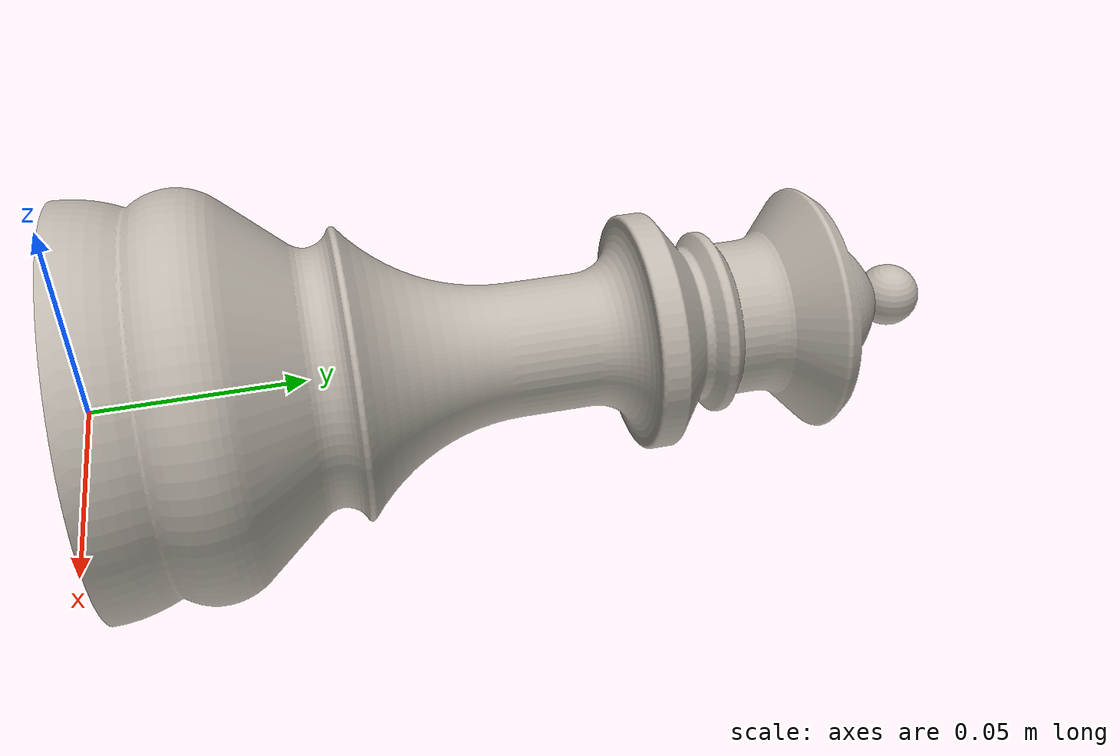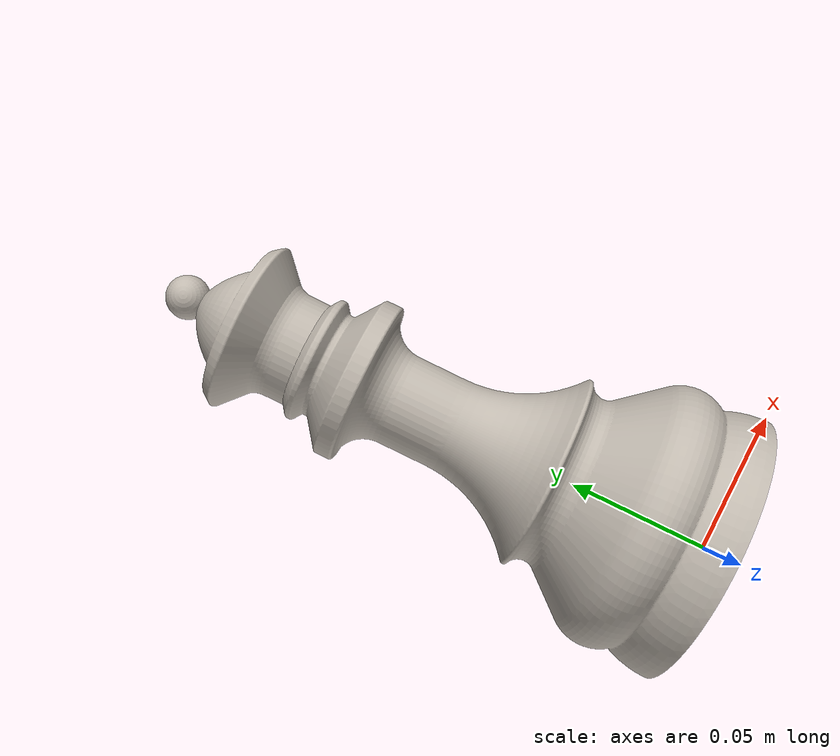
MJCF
<mujoco model="queen">
  <asset>
    <mesh file="meshes/queen.stl" name="queen_mesh" scale="0.001 0.001 0.001"/>
    <texture file="../textures/chess_texture.png" type="2d" name="tex-queen" />
    <material name="mat-queen" reflectance="0.2" texrepeat="1 1" texture="tex-queen" texuniform="true"/>
  </asset>
  <worldbody>
    <body>
      <body name="object">
        <geom pos="0 0 0" mesh="queen_mesh" type="mesh" solimp="0.998 0.998 0.001" solref="0.001 1" density="5000" friction="0.5 0.3 0.1" material="mat-queen" group="0" condim="4"/>
      </body>
      <site rgba="0 0 0 0" size="0.005" pos="0 0 0" name="queen_site"/>
    </body>
  </worldbody>
</mujoco>
